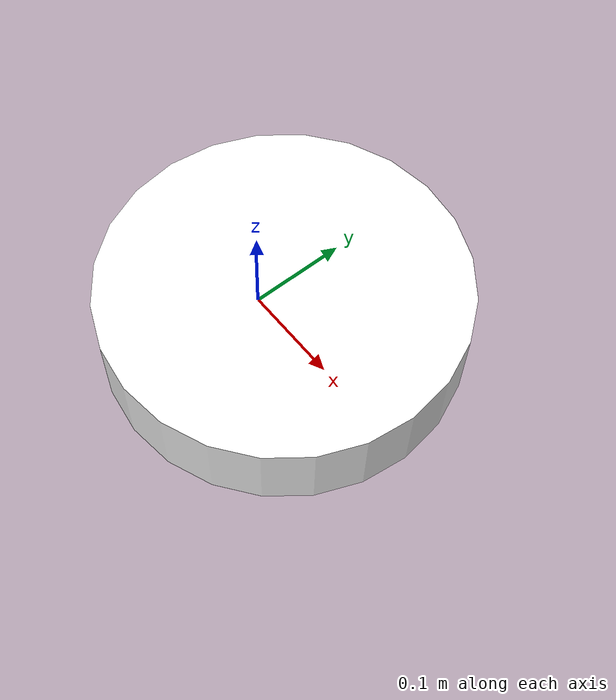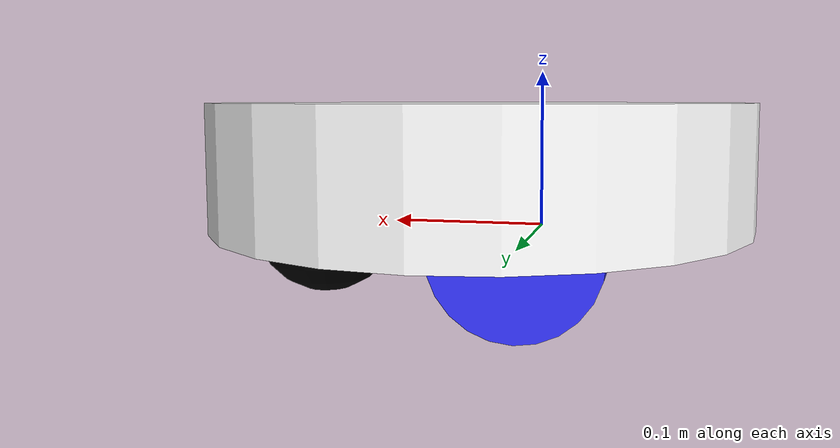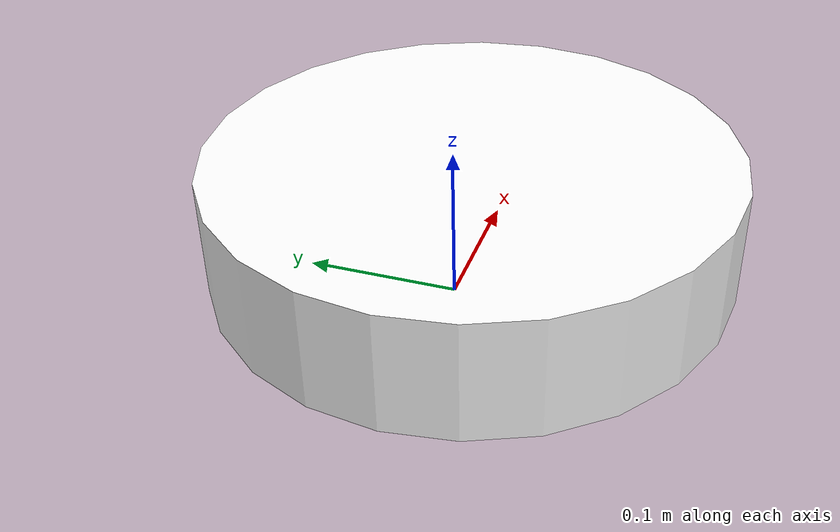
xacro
<?xml version="1.0"?>
<robot xmlns:xacro="http://www.ros.org/wiki/xacro">
    <xacro:include filename="inertial_macros.xacro" />
    <material name="white">
        <color rgba="1 1 1 1"/>
    </material>

    <material name="orange">
        <color rgba="1 0.3 0.1 1"/>
    </material>

    <material name="blue">
        <color rgba="0.2 0.2 1 1"/>
    </material>

    <material name="black">
        <color rgba="0 0 0 1"/>
    </material>
    <material name="red">
        <color rgba="1 0 0 1"/>
    </material>

    <!-- BASE_FOOTPRINT LINK -->

    <joint name="base_footprint_joint" type="fixed">
        <parent link="base_link"/>
        <child link="base_footprint"/>
        <origin xyz="0 0 0" rpy="0 0 0"/>
    </joint>

    <link name="base_footprint">
    </link>

    <link name="base_link">
    </link>

    <joint name="chassis_joint" type="fixed">
        <parent link="base_link"/>
        <child link="chassis"/>
        <origin xyz="0 0 0"/>
    </joint>

    <xacro:property name="chassisOrigin" value="0.04 0 0.04" />
    <xacro:property name="chassisLength" value="0.08" />
    <xacro:property name="chassisRadius" value="0.175" />
    <xacro:property name="chassisMaterial" value="white" />
    <link name="chassis">
        <visual>
            <origin xyz="${chassisOrigin}" rpy="0 0 0"/>
            <geometry>
                <cylinder length="${chassisLength}" radius="${chassisRadius}"/>
            </geometry>
            <material name="${chassisMaterial}"/>
        </visual>
        <collision>
            <origin xyz="${chassisOrigin}" rpy="0 0 0"/>
            <geometry>
                <cylinder length="${chassisLength}" radius="${chassisRadius}"/>
            </geometry>
            <material name="${chassisMaterial}"/>
        </collision>
        <xacro:inertial_cylinder mass="0.3" length="${chassisLength}" radius="${chassisRadius}">
            <origin xyz="${chassisOrigin}" rpy="0 0 0"/>
        </xacro:inertial_cylinder>
    </link>
    <gazebo reference="chassis">
        <material>Gazebo/White</material>
    </gazebo>
    <!-- LEFT WHEEL -->

    <joint name="left_wheel_joint" type="continuous">
        <parent link="base_link"/>
        <child link="left_wheel"/>
        <origin xyz="0 0.09 0" rpy="-${pi/2} 0 0"/>
        <axis xyz="0 0 1"/>
    </joint>

    <xacro:property name="leftWheelLength" value="0.04" />
    <xacro:property name="leftWheelRadius" value="0.05" />
    <xacro:property name="leftWheelMaterial" value="blue" />
    <link name="left_wheel">
        <visual>
            <geometry>
                <cylinder length="${leftWheelLength}" radius="${leftWheelRadius}" />/>
            </geometry>
            <material name="${leftWheelMaterial}"/>
        </visual>
        <collision>
            <geometry>
                <cylinder length="${leftWheelLength}" radius="${leftWheelRadius}" />/>
            </geometry>
            <material name="${leftWheelMaterial}"/>
        </collision>
        <xacro:inertial_cylinder mass="0.1" length="0.04" radius="0.05">
            <origin xyz="0 0 0" rpy="0 0 0"/>
        </xacro:inertial_cylinder>
    </link>
    <gazebo reference="left_wheel">
        <material>Gazebo/Blue</material>
    </gazebo>
    <!-- RIGHT WHEEL -->

    <joint name="right_wheel_joint" type="continuous">
        <parent link="base_link"/>
        <child link="right_wheel"/>
        <origin xyz="0 -0.09 0" rpy="${pi/2} 0 0"/>
        <axis xyz="0 0 -1"/>
    </joint>

    <xacro:property name="rightWheelLength" value="0.04" />
    <xacro:property name="rightWheelRadius" value="0.05" />
    <xacro:property name="rightWheelMaterial" value="blue" />
    <link name="right_wheel">
        <visual>
            <geometry>
                <cylinder length="${rightWheelLength}" radius="${rightWheelRadius}" />/>
            </geometry>
            <material name="${rightWheelMaterial}"/>
        </visual>
        <collision>
            <geometry>
                <cylinder length="${rightWheelLength}" radius="${rightWheelRadius}" />/>
            </geometry>
            <material name="${rightWheelMaterial}"/>
        </collision>
        <xacro:inertial_cylinder mass="0.1" length="0.04" radius="0.05">
            <origin xyz="0 0 0" rpy="0 0 0"/>
        </xacro:inertial_cylinder>
    </link>
    <gazebo reference="right_wheel">
        <material>Gazebo/Blue</material>
    </gazebo>

    <!-- CASTER WHEEL -->

    <joint name="caster_wheel_joint" type="fixed">
        <parent link="chassis"/>
        <child link="caster_wheel"/>
        <origin xyz="0.15 0 0" rpy="0 0 0"/>
    </joint>

    <xacro:property name="casterWheelRadius" value="0.05" />
    <xacro:property name="casterWheelMaterial" value="black" />
    <link name="caster_wheel">
        <visual>
            <geometry>
                <sphere radius="${casterWheelRadius}" />
            </geometry>
            <material name="${casterWheelMaterial}"/>
        </visual>
        <collision>
            <geometry>
                <sphere radius="${casterWheelRadius}" />
            </geometry>
            <material name="${casterWheelMaterial}"/>
        </collision>
        <xacro:inertial_sphere mass="0.1" radius="0.05">
            <origin xyz="0 0 0" rpy="0 0 0"/>
        </xacro:inertial_sphere>
    </link>
    <gazebo reference="caster_wheel">
        <material>Gazebo/Black</material>
        <mu1 value="0.001"/>
        <mu2 value="0.001"/>
    </gazebo>

</robot>
